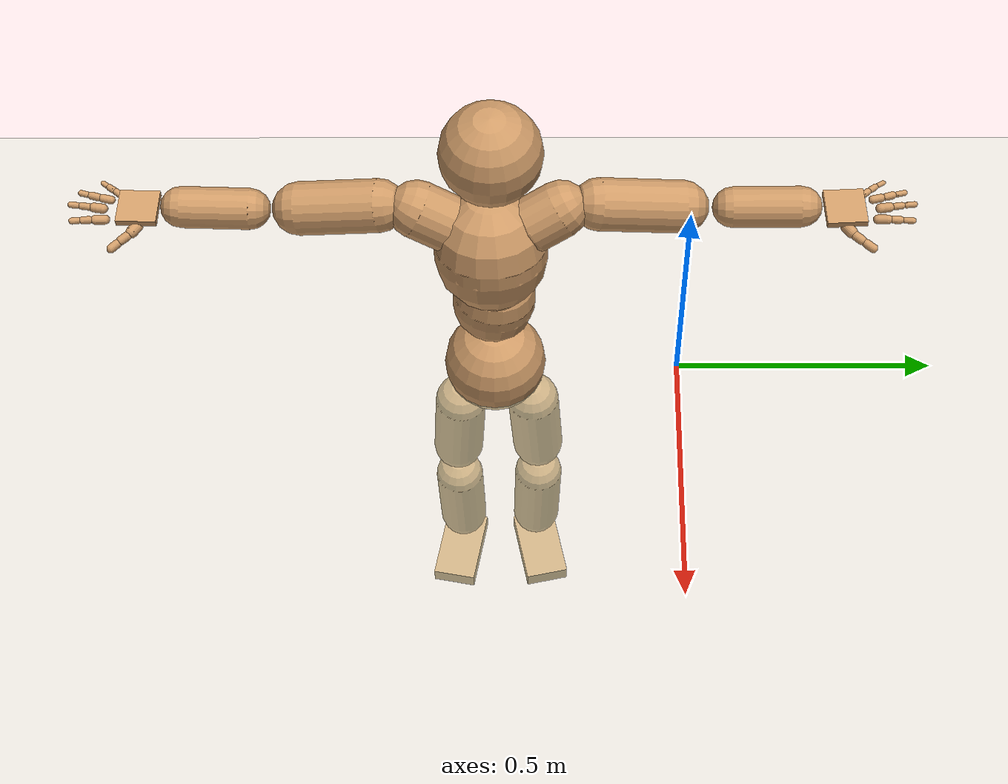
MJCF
<mujoco model="humanoid">
  <compiler coordinate="local" angle="radian"/>
  <default>
    <joint damping="0.0" armature="0.01" stiffness="0.0" limited="true"/>
    <geom conaffinity="1" condim="3" contype="7" margin="0.001" rgba="0.8 0.6 .4 1"/>
  </default>
  <asset>
    <texture type="skybox" builtin="gradient" rgb1=".4 .5 .6" rgb2="0 0 0" width="100" height="100"/>
    <texture builtin="flat" height="1278" mark="cross" markrgb="1 1 1" name="texgeom" random="0.01" rgb1="0.8 0.6 0.4" rgb2="0.8 0.6 0.4" type="cube" width="127"/>
    <texture builtin="checker" height="100" name="texplane" rgb1="0 0 0" rgb2="0.8 0.8 0.8" type="2d" width="100"/>
    <material name="MatPlane" reflectance="0.5" shininess="1" specular="1" texrepeat="60 60" texture="texplane"/>
    <material name="geom" texture="texgeom" texuniform="true"/>
  </asset>
  <worldbody>
    <light cutoff="100" diffuse="1 1 1" dir="-0 0 -1.3" directional="true" exponent="1" pos="0 0 1.3" specular=".1 .1 .1"/>
    <geom conaffinity="1" condim="3" name="floor" pos="0 0 0" rgba="0.8 0.9 0.8 1" size="100 100 .2" type="plane" material="MatPlane"/>
    <body name="Pelvis" pos="0.0001 -0.3574 0.0228">
      <freejoint name="Pelvis"/>
      <geom type="sphere" contype="1" conaffinity="1" density="500" size="0.0991" pos="0.0000 0.0000 0.0000" name="Pelvis"/>
      <body name="L_Hip" pos="-0.0056 0.0706 -0.0911">
        <joint name="L_Hip_x" type="hinge" pos="0 0 0" axis="1 0 0" stiffness="800" damping="80" armature="0.02" range="-180.0000 180.0000"/>
        <joint name="L_Hip_y" type="hinge" pos="0 0 0" axis="0 1 0" stiffness="800" damping="80" armature="0.02" range="-180.0000 180.0000"/>
        <joint name="L_Hip_z" type="hinge" pos="0 0 0" axis="0 0 1" stiffness="800" damping="80" armature="0.02" range="-180.0000 180.0000"/>
        <geom type="capsule" contype="1" conaffinity="1" density="500" fromto="-0.0047 0.0031 -0.0668 -0.0188 0.0124 -0.2674" size="0.0515" name="L_Hip"/>
        <body name="L_Knee" pos="-0.0235 0.0155 -0.3342">
          <joint name="L_Knee_x" type="hinge" pos="0 0 0" axis="1 0 0" stiffness="800" damping="80" armature="0.02" range="-180.0000 180.0000"/>
          <joint name="L_Knee_y" type="hinge" pos="0 0 0" axis="0 1 0" stiffness="800" damping="80" armature="0.02" range="-180.0000 180.0000"/>
          <joint name="L_Knee_z" type="hinge" pos="0 0 0" axis="0 0 1" stiffness="800" damping="80" armature="0.02" range="-180.0000 180.0000"/>
          <geom type="capsule" contype="1" conaffinity="1" density="500" fromto="-0.0044 -0.0019 -0.0697 -0.0176 -0.0076 -0.2788" size="0.0499" name="L_Knee"/>
          <body name="L_Ankle" pos="-0.022 -0.0095 -0.3485">
            <joint name="L_Ankle_x" type="hinge" pos="0 0 0" axis="1 0 0" stiffness="800" damping="80" armature="0.02" range="-180.0000 180.0000"/>
            <joint name="L_Ankle_y" type="hinge" pos="0 0 0" axis="0 1 0" stiffness="800" damping="80" armature="0.02" range="-180.0000 180.0000"/>
            <joint name="L_Ankle_z" type="hinge" pos="0 0 0" axis="0 0 1" stiffness="800" damping="80" armature="0.02" range="-180.0000 180.0000"/>
            <geom type="box" contype="1" conaffinity="1" density="500" pos="0.0512 0.0109 -0.0191" size="0.0791 0.0453 0.0188" quat="0.9945 0.0000 0.0000 0.1044" name="L_Ankle"/>
            <body name="L_Toe" pos="0.1024 0.0217 -0.0381">
              <joint name="L_Toe_x" type="hinge" pos="0 0 0" axis="1 0 0" stiffness="500" damping="50" armature="0.02" range="-180.0000 180.0000"/>
              <joint name="L_Toe_y" type="hinge" pos="0 0 0" axis="0 1 0" stiffness="500" damping="50" armature="0.02" range="-180.0000 180.0000"/>
              <joint name="L_Toe_z" type="hinge" pos="0 0 0" axis="0 0 1" stiffness="500" damping="50" armature="0.02" range="-180.0000 180.0000"/>
              <geom type="box" contype="1" conaffinity="1" density="500" pos="0.0000 0.0000 0.0203" size="0.0009 0.0022 0.001" quat="0.9938 0.0000 0.0000 0.1115" name="L_Toe"/>
            </body>
          </body>
        </body>
      </body>
      <body name="R_Hip" pos="-0.0072 -0.0693 -0.0974">
        <joint name="R_Hip_x" type="hinge" pos="0 0 0" axis="1 0 0" stiffness="800" damping="80" armature="0.02" range="-180.0000 180.0000"/>
        <joint name="R_Hip_y" type="hinge" pos="0 0 0" axis="0 1 0" stiffness="800" damping="80" armature="0.02" range="-180.0000 180.0000"/>
        <joint name="R_Hip_z" type="hinge" pos="0 0 0" axis="0 0 1" stiffness="800" damping="80" armature="0.02" range="-180.0000 180.0000"/>
        <geom type="capsule" contype="1" conaffinity="1" density="500" fromto="-0.0035 -0.0038 -0.0660 -0.0141 -0.0152 -0.2640" size="0.0512" name="R_Hip"/>
        <body name="R_Knee" pos="-0.0177 -0.0189 -0.33">
          <joint name="R_Knee_x" type="hinge" pos="0 0 0" axis="1 0 0" stiffness="800" damping="80" armature="0.02" range="-180.0000 180.0000"/>
          <joint name="R_Knee_y" type="hinge" pos="0 0 0" axis="0 1 0" stiffness="800" damping="80" armature="0.02" range="-180.0000 180.0000"/>
          <joint name="R_Knee_z" type="hinge" pos="0 0 0" axis="0 0 1" stiffness="800" damping="80" armature="0.02" range="-180.0000 180.0000"/>
          <geom type="capsule" contype="1" conaffinity="1" density="500" fromto="-0.0037 0.0010 -0.0680 -0.0146 0.0039 -0.2721" size="0.0498" name="R_Knee"/>
          <body name="R_Ankle" pos="-0.0183 0.0049 -0.3401">
            <joint name="R_Ankle_x" type="hinge" pos="0 0 0" axis="1 0 0" stiffness="800" damping="80" armature="0.02" range="-180.0000 180.0000"/>
            <joint name="R_Ankle_y" type="hinge" pos="0 0 0" axis="0 1 0" stiffness="800" damping="80" armature="0.02" range="-180.0000 180.0000"/>
            <joint name="R_Ankle_z" type="hinge" pos="0 0 0" axis="0 0 1" stiffness="800" damping="80" armature="0.02" range="-180.0000 180.0000"/>
            <geom type="box" contype="1" conaffinity="1" density="500" pos="0.0483 -0.0090 -0.0209" size="0.0791 0.0453 0.0188" quat="0.9958 0.0000 0.0000 -0.0920" name="R_Ankle"/>
            <body name="R_Toe" pos="0.0965 -0.018 -0.0418">
              <joint name="R_Toe_x" type="hinge" pos="0 0 0" axis="1 0 0" stiffness="500" damping="50" armature="0.02" range="-180.0000 180.0000"/>
              <joint name="R_Toe_y" type="hinge" pos="0 0 0" axis="0 1 0" stiffness="500" damping="50" armature="0.02" range="-180.0000 180.0000"/>
              <joint name="R_Toe_z" type="hinge" pos="0 0 0" axis="0 0 1" stiffness="500" damping="50" armature="0.02" range="-180.0000 180.0000"/>
              <geom type="box" contype="1" conaffinity="1" density="500" pos="0.0000 0.0000 0.0222" size="0.0009 0.0022 0.001" quat="0.9968 0.0000 0.0000 -0.0804" name="R_Toe"/>
            </body>
          </body>
        </body>
      </body>
      <body name="Torso" pos="-0.0311 -0.0053 0.1045">
        <joint name="Torso_x" type="hinge" pos="0 0 0" axis="1 0 0" stiffness="1000" damping="100" armature="0.02" range="-180.0000 180.0000"/>
        <joint name="Torso_y" type="hinge" pos="0 0 0" axis="0 1 0" stiffness="1000" damping="100" armature="0.02" range="-180.0000 180.0000"/>
        <joint name="Torso_z" type="hinge" pos="0 0 0" axis="0 0 1" stiffness="1000" damping="100" armature="0.02" range="-180.0000 180.0000"/>
        <geom type="capsule" contype="1" conaffinity="1" density="500" fromto="-0.0059 0.0070 0.0761 -0.0039 0.0046 0.0507" size="0.079" name="Torso"/>
        <body name="Spine" pos="-0.0099 0.0116 0.1268">
          <joint name="Spine_x" type="hinge" pos="0 0 0" axis="1 0 0" stiffness="1000" damping="100" armature="0.02" range="-180.0000 180.0000"/>
          <joint name="Spine_y" type="hinge" pos="0 0 0" axis="0 1 0" stiffness="1000" damping="100" armature="0.02" range="-180.0000 180.0000"/>
          <joint name="Spine_z" type="hinge" pos="0 0 0" axis="0 0 1" stiffness="1000" damping="100" armature="0.02" range="-180.0000 180.0000"/>
          <geom type="capsule" contype="1" conaffinity="1" density="500" fromto="0.0215 -0.0039 0.0277 0.0144 -0.0026 0.0184" size="0.0655" name="Spine"/>
          <body name="Chest" pos="0.0359 -0.0066 0.0461">
            <joint name="Chest_x" type="hinge" pos="0 0 0" axis="1 0 0" stiffness="1000" damping="100" armature="0.02" range="-180.0000 180.0000"/>
            <joint name="Chest_y" type="hinge" pos="0 0 0" axis="0 1 0" stiffness="1000" damping="100" armature="0.02" range="-180.0000 180.0000"/>
            <joint name="Chest_z" type="hinge" pos="0 0 0" axis="0 0 1" stiffness="1000" damping="100" armature="0.02" range="-180.0000 180.0000"/>
            <geom type="capsule" contype="1" conaffinity="1" density="500" fromto="-0.0197 -0.0017 0.0862 -0.0131 -0.0012 0.0575" size="0.1053" name="Chest"/>
            <body name="Neck" pos="-0.0486 -0.0061 0.1984">
              <joint name="Neck_x" type="hinge" pos="0 0 0" axis="1 0 0" stiffness="500" damping="50" armature="0.02" range="-180.0000 180.0000"/>
              <joint name="Neck_y" type="hinge" pos="0 0 0" axis="0 1 0" stiffness="500" damping="50" armature="0.02" range="-180.0000 180.0000"/>
              <joint name="Neck_z" type="hinge" pos="0 0 0" axis="0 0 1" stiffness="500" damping="50" armature="0.02" range="-180.0000 180.0000"/>
              <geom type="capsule" contype="1" conaffinity="1" density="500" fromto="0.0034 0.0018 0.0262 0.0136 0.0073 0.1047" size="0.0398" name="Neck"/>
              <body name="Head" pos="0.017 0.0091 0.1308">
                <joint name="Head_x" type="hinge" pos="0 0 0" axis="1 0 0" stiffness="500" damping="50" armature="0.02" range="-180.0000 180.0000"/>
                <joint name="Head_y" type="hinge" pos="0 0 0" axis="0 1 0" stiffness="500" damping="50" armature="0.02" range="-180.0000 180.0000"/>
                <joint name="Head_z" type="hinge" pos="0 0 0" axis="0 0 1" stiffness="500" damping="50" armature="0.02" range="-180.0000 180.0000"/>
                <geom type="sphere" contype="1" conaffinity="1" density="500" size="0.0934" pos="0.0000 0.0000 0.0000" name="Head"/>
              </body>
            </body>
            <body name="L_Thorax" pos="-0.0215 0.0548 0.1182">
              <joint name="L_Thorax_x" type="hinge" pos="0 0 0" axis="1 0 0" stiffness="500" damping="50" armature="0.02" range="-180.0000 180.0000"/>
              <joint name="L_Thorax_y" type="hinge" pos="0 0 0" axis="0 1 0" stiffness="500" damping="50" armature="0.02" range="-180.0000 180.0000"/>
              <joint name="L_Thorax_z" type="hinge" pos="0 0 0" axis="0 0 1" stiffness="500" damping="50" armature="0.02" range="-180.0000 180.0000"/>
              <geom type="capsule" contype="1" conaffinity="1" density="500" fromto="-0.0054 0.0178 0.0090 -0.0216 0.0713 0.0361" size="0.0529" name="L_Thorax"/>
              <body name="L_Shoulder" pos="-0.027 0.0891 0.0451">
                <joint name="L_Shoulder_x" type="hinge" pos="0 0 0" axis="1 0 0" stiffness="500" damping="50" armature="0.02" range="-180.0000 180.0000"/>
                <joint name="L_Shoulder_y" type="hinge" pos="0 0 0" axis="0 1 0" stiffness="500" damping="50" armature="0.02" range="-180.0000 180.0000"/>
                <joint name="L_Shoulder_z" type="hinge" pos="0 0 0" axis="0 0 1" stiffness="500" damping="50" armature="0.02" range="-180.0000 180.0000"/>
                <geom type="capsule" contype="1" conaffinity="1" density="500" fromto="-0.0052 0.0511 -0.0093 -0.0208 0.2043 -0.0373" size="0.0491" name="L_Shoulder"/>
                <body name="L_Elbow" pos="-0.026 0.2554 -0.0466">
                  <joint name="L_Elbow_x" type="hinge" pos="0 0 0" axis="1 0 0" stiffness="500" damping="50" armature="0.02" range="-720.0000 720.0000"/>
                  <joint name="L_Elbow_y" type="hinge" pos="0 0 0" axis="0 1 0" stiffness="500" damping="50" armature="0.02" range="-720.0000 720.0000"/>
                  <joint name="L_Elbow_z" type="hinge" pos="0 0 0" axis="0 0 1" stiffness="500" damping="50" armature="0.02" range="-720.0000 720.0000"/>
                  <geom type="capsule" contype="1" conaffinity="1" density="500" fromto="0.0009 0.0418 0.0016 0.0036 0.1671 0.0065" size="0.0381" name="L_Elbow"/>
                  <body name="L_Wrist" pos="0.0044 0.2089 0.0082">
                    <joint name="L_Wrist_x" type="hinge" pos="0 0 0" axis="1 0 0" stiffness="300" damping="30" armature="0.02" range="-180.0000 180.0000"/>
                    <joint name="L_Wrist_y" type="hinge" pos="0 0 0" axis="0 1 0" stiffness="300" damping="30" armature="0.02" range="-180.0000 180.0000"/>
                    <joint name="L_Wrist_z" type="hinge" pos="0 0 0" axis="0 0 1" stiffness="300" damping="30" armature="0.02" range="-180.0000 180.0000"/>
                    <geom type="box" contype="1" conaffinity="1" density="500" pos="-0.0020 0.0388 -0.0076" size="0.0371 0.0377 0.0069" quat="0.7254 0.0000 0.0000 -0.6883" name="L_Wrist"/>
                    <body name="L_Index1" pos="0.0198 0.0916 -0.0128">
                      <joint name="L_Index1_x" type="hinge" pos="0 0 0" axis="1 0 0" stiffness="100" damping="10" armature="0.02" range="-180.0000 180.0000"/>
                      <joint name="L_Index1_y" type="hinge" pos="0 0 0" axis="0 1 0" stiffness="100" damping="10" armature="0.02" range="-180.0000 180.0000"/>
                      <joint name="L_Index1_z" type="hinge" pos="0 0 0" axis="0 0 1" stiffness="100" damping="10" armature="0.02" range="-180.0000 180.0000"/>
                      <geom type="capsule" contype="1" conaffinity="1" density="500" fromto="0.0005 0.0060 0.0006 0.0020 0.0238 0.0023" size="0.0087" name="L_Index1"/>
                      <body name="L_Index2" pos="0.0025 0.0298 0.0028">
                        <joint name="L_Index2_x" type="hinge" pos="0 0 0" axis="1 0 0" stiffness="100" damping="10" armature="0.02" range="-180.0000 180.0000"/>
                        <joint name="L_Index2_y" type="hinge" pos="0 0 0" axis="0 1 0" stiffness="100" damping="10" armature="0.02" range="-180.0000 180.0000"/>
                        <joint name="L_Index2_z" type="hinge" pos="0 0 0" axis="0 0 1" stiffness="100" damping="10" armature="0.02" range="-180.0000 180.0000"/>
                        <geom type="capsule" contype="1" conaffinity="1" density="500" fromto="0.0001 0.0042 -0.0002 0.0002 0.0169 -0.0010" size="0.0071" name="L_Index2"/>
                        <body name="L_Index3" pos="0.0003 0.0211 -0.0012">
                          <joint name="L_Index3_x" type="hinge" pos="0 0 0" axis="1 0 0" stiffness="100" damping="10" armature="0.02" range="-180.0000 180.0000"/>
                          <joint name="L_Index3_y" type="hinge" pos="0 0 0" axis="0 1 0" stiffness="100" damping="10" armature="0.02" range="-180.0000 180.0000"/>
                          <joint name="L_Index3_z" type="hinge" pos="0 0 0" axis="0 0 1" stiffness="100" damping="10" armature="0.02" range="-180.0000 180.0000"/>
                          <geom type="capsule" contype="1" conaffinity="1" density="500" fromto="0.0005 0.0046 0.0002 0.0018 0.0185 0.0006" size="0.0059" name="L_Index3"/>
                        </body>
                      </body>
                    </body>
                    <body name="L_Middle1" pos="-0.0024 0.0981 -0.0106">
                      <joint name="L_Middle1_x" type="hinge" pos="0 0 0" axis="1 0 0" stiffness="100" damping="10" armature="0.02" range="-180.0000 180.0000"/>
                      <joint name="L_Middle1_y" type="hinge" pos="0 0 0" axis="0 1 0" stiffness="100" damping="10" armature="0.02" range="-180.0000 180.0000"/>
                      <joint name="L_Middle1_z" type="hinge" pos="0 0 0" axis="0 0 1" stiffness="100" damping="10" armature="0.02" range="-180.0000 180.0000"/>
                      <geom type="capsule" contype="1" conaffinity="1" density="500" fromto="-0.0008 0.0056 0.0003 -0.0030 0.0225 0.0011" size="0.0089" name="L_Middle1"/>
                      <body name="L_Middle2" pos="-0.0038 0.0281 0.0014">
                        <joint name="L_Middle2_x" type="hinge" pos="0 0 0" axis="1 0 0" stiffness="100" damping="10" armature="0.02" range="-180.0000 180.0000"/>
                        <joint name="L_Middle2_y" type="hinge" pos="0 0 0" axis="0 1 0" stiffness="100" damping="10" armature="0.02" range="-180.0000 180.0000"/>
                        <joint name="L_Middle2_z" type="hinge" pos="0 0 0" axis="0 0 1" stiffness="100" damping="10" armature="0.02" range="-180.0000 180.0000"/>
                        <geom type="capsule" contype="1" conaffinity="1" density="500" fromto="-0.0007 0.0043 -0.0001 -0.0029 0.0174 -0.0005" size="0.0066" name="L_Middle2"/>
                        <body name="L_Middle3" pos="-0.0037 0.0217 -0.0006">
                          <joint name="L_Middle3_x" type="hinge" pos="0 0 0" axis="1 0 0" stiffness="100" damping="10" armature="0.02" range="-180.0000 180.0000"/>
                          <joint name="L_Middle3_y" type="hinge" pos="0 0 0" axis="0 1 0" stiffness="100" damping="10" armature="0.02" range="-180.0000 180.0000"/>
                          <joint name="L_Middle3_z" type="hinge" pos="0 0 0" axis="0 0 1" stiffness="100" damping="10" armature="0.02" range="-180.0000 180.0000"/>
                          <geom type="capsule" contype="1" conaffinity="1" density="500" fromto="-0.0003 0.0047 0.0003 -0.0013 0.0190 0.0011" size="0.0056" name="L_Middle3"/>
                        </body>
                      </body>
                    </body>
                    <body name="L_Pinky1" pos="-0.0391 0.0747 -0.0187">
                      <joint name="L_Pinky1_x" type="hinge" pos="0 0 0" axis="1 0 0" stiffness="100" damping="10" armature="0.02" range="-180.0000 180.0000"/>
                      <joint name="L_Pinky1_y" type="hinge" pos="0 0 0" axis="0 1 0" stiffness="100" damping="10" armature="0.02" range="-180.0000 180.0000"/>
                      <joint name="L_Pinky1_z" type="hinge" pos="0 0 0" axis="0 0 1" stiffness="100" damping="10" armature="0.02" range="-180.0000 180.0000"/>
                      <geom type="capsule" contype="1" conaffinity="1" density="500" fromto="-0.0023 0.0028 -0.0001 -0.0091 0.0111 -0.0003" size="0.0064" name="L_Pinky1"/>
                      <body name="L_Pinky2" pos="-0.0113 0.0139 -0.0004">
                        <joint name="L_Pinky2_x" type="hinge" pos="0 0 0" axis="1 0 0" stiffness="100" damping="10" armature="0.02" range="-180.0000 180.0000"/>
                        <joint name="L_Pinky2_y" type="hinge" pos="0 0 0" axis="0 1 0" stiffness="100" damping="10" armature="0.02" range="-180.0000 180.0000"/>
                        <joint name="L_Pinky2_z" type="hinge" pos="0 0 0" axis="0 0 1" stiffness="100" damping="10" armature="0.02" range="-180.0000 180.0000"/>
                        <geom type="capsule" contype="1" conaffinity="1" density="500" fromto="-0.0022 0.0028 -0.0002 -0.0087 0.0113 -0.0007" size="0.0062" name="L_Pinky2"/>
                        <body name="L_Pinky3" pos="-0.0109 0.0141 -0.0009">
                          <joint name="L_Pinky3_x" type="hinge" pos="0 0 0" axis="1 0 0" stiffness="100" damping="10" armature="0.02" range="-180.0000 180.0000"/>
                          <joint name="L_Pinky3_y" type="hinge" pos="0 0 0" axis="0 1 0" stiffness="100" damping="10" armature="0.02" range="-180.0000 180.0000"/>
                          <joint name="L_Pinky3_z" type="hinge" pos="0 0 0" axis="0 0 1" stiffness="100" damping="10" armature="0.02" range="-180.0000 180.0000"/>
                          <geom type="capsule" contype="1" conaffinity="1" density="500" fromto="-0.0018 0.0032 0.0002 -0.0071 0.0129 0.0009" size="0.0047" name="L_Pinky3"/>
                        </body>
                      </body>
                    </body>
                    <body name="L_Ring1" pos="-0.0243 0.0868 -0.0135">
                      <joint name="L_Ring1_x" type="hinge" pos="0 0 0" axis="1 0 0" stiffness="100" damping="10" armature="0.02" range="-180.0000 180.0000"/>
                      <joint name="L_Ring1_y" type="hinge" pos="0 0 0" axis="0 1 0" stiffness="100" damping="10" armature="0.02" range="-180.0000 180.0000"/>
                      <joint name="L_Ring1_z" type="hinge" pos="0 0 0" axis="0 0 1" stiffness="100" damping="10" armature="0.02" range="-180.0000 180.0000"/>
                      <geom type="capsule" contype="1" conaffinity="1" density="500" fromto="-0.0011 0.0051 0.0003 -0.0042 0.0205 0.0013" size="0.0077" name="L_Ring1"/>
                      <body name="L_Ring2" pos="-0.0053 0.0256 0.0017">
                        <joint name="L_Ring2_x" type="hinge" pos="0 0 0" axis="1 0 0" stiffness="100" damping="10" armature="0.02" range="-180.0000 180.0000"/>
                        <joint name="L_Ring2_y" type="hinge" pos="0 0 0" axis="0 1 0" stiffness="100" damping="10" armature="0.02" range="-180.0000 180.0000"/>
                        <joint name="L_Ring2_z" type="hinge" pos="0 0 0" axis="0 0 1" stiffness="100" damping="10" armature="0.02" range="-180.0000 180.0000"/>
                        <geom type="capsule" contype="1" conaffinity="1" density="500" fromto="-0.0013 0.0042 -0.0002 -0.0054 0.0167 -0.0008" size="0.0071" name="L_Ring2"/>
                        <body name="L_Ring3" pos="-0.0067 0.0209 -0.001">
                          <joint name="L_Ring3_x" type="hinge" pos="0 0 0" axis="1 0 0" stiffness="100" damping="10" armature="0.02" range="-180.0000 180.0000"/>
                          <joint name="L_Ring3_y" type="hinge" pos="0 0 0" axis="0 1 0" stiffness="100" damping="10" armature="0.02" range="-180.0000 180.0000"/>
                          <joint name="L_Ring3_z" type="hinge" pos="0 0 0" axis="0 0 1" stiffness="100" damping="10" armature="0.02" range="-180.0000 180.0000"/>
                          <geom type="capsule" contype="1" conaffinity="1" density="500" fromto="-0.0009 0.0046 0.0002 -0.0038 0.0183 0.0008" size="0.0054" name="L_Ring3"/>
                        </body>
                      </body>
                    </body>
                    <body name="L_Thumb1" pos="0.0256 0.0365 -0.0202">
                      <joint name="L_Thumb1_x" type="hinge" pos="0 0 0" axis="1 0 0" stiffness="100" damping="10" armature="0.02" range="-180.0000 180.0000"/>
                      <joint name="L_Thumb1_y" type="hinge" pos="0 0 0" axis="0 1 0" stiffness="100" damping="10" armature="0.02" range="-180.0000 180.0000"/>
                      <joint name="L_Thumb1_z" type="hinge" pos="0 0 0" axis="0 0 1" stiffness="100" damping="10" armature="0.02" range="-180.0000 180.0000"/>
                      <geom type="capsule" contype="1" conaffinity="1" density="500" fromto="0.0045 0.0031 0.0001 0.0180 0.0123 0.0005" size="0.0109" name="L_Thumb1"/>
                      <body name="L_Thumb2" pos="0.0225 0.0154 0.0006">
                        <joint name="L_Thumb2_x" type="hinge" pos="0 0 0" axis="1 0 0" stiffness="100" damping="10" armature="0.02" range="-180.0000 180.0000"/>
                        <joint name="L_Thumb2_y" type="hinge" pos="0 0 0" axis="0 1 0" stiffness="100" damping="10" armature="0.02" range="-180.0000 180.0000"/>
                        <joint name="L_Thumb2_z" type="hinge" pos="0 0 0" axis="0 0 1" stiffness="100" damping="10" armature="0.02" range="-180.0000 180.0000"/>
                        <geom type="capsule" contype="1" conaffinity="1" density="500" fromto="0.0027 0.0037 -0.0011 0.0108 0.0149 -0.0044" size="0.0086" name="L_Thumb2"/>
                        <body name="L_Thumb3" pos="0.0135 0.0186 -0.0056">
                          <joint name="L_Thumb3_x" type="hinge" pos="0 0 0" axis="1 0 0" stiffness="100" damping="10" armature="0.02" range="-180.0000 180.0000"/>
                          <joint name="L_Thumb3_y" type="hinge" pos="0 0 0" axis="0 1 0" stiffness="100" damping="10" armature="0.02" range="-180.0000 180.0000"/>
                          <joint name="L_Thumb3_z" type="hinge" pos="0 0 0" axis="0 0 1" stiffness="100" damping="10" armature="0.02" range="-180.0000 180.0000"/>
                          <geom type="capsule" contype="1" conaffinity="1" density="500" fromto="0.0031 0.0041 -0.0007 0.0124 0.0165 -0.0028" size="0.0082" name="L_Thumb3"/>
                        </body>
                      </body>
                    </body>
                  </body>
                </body>
              </body>
            </body>
            <body name="R_Thorax" pos="-0.0282 -0.0575 0.1144">
              <joint name="R_Thorax_x" type="hinge" pos="0 0 0" axis="1 0 0" stiffness="500" damping="50" armature="0.02" range="-180.0000 180.0000"/>
              <joint name="R_Thorax_y" type="hinge" pos="0 0 0" axis="0 1 0" stiffness="500" damping="50" armature="0.02" range="-180.0000 180.0000"/>
              <joint name="R_Thorax_z" type="hinge" pos="0 0 0" axis="0 0 1" stiffness="500" damping="50" armature="0.02" range="-180.0000 180.0000"/>
              <geom type="capsule" contype="1" conaffinity="1" density="500" fromto="-0.0039 -0.0192 0.0094 -0.0157 -0.0770 0.0375" size="0.054" name="R_Thorax"/>
              <body name="R_Shoulder" pos="-0.0196 -0.0962 0.0469">
                <joint name="R_Shoulder_x" type="hinge" pos="0 0 0" axis="1 0 0" stiffness="500" damping="50" armature="0.02" range="-180.0000 180.0000"/>
                <joint name="R_Shoulder_y" type="hinge" pos="0 0 0" axis="0 1 0" stiffness="500" damping="50" armature="0.02" range="-180.0000 180.0000"/>
                <joint name="R_Shoulder_z" type="hinge" pos="0 0 0" axis="0 0 1" stiffness="500" damping="50" armature="0.02" range="-180.0000 180.0000"/>
                <geom type="capsule" contype="1" conaffinity="1" density="500" fromto="-0.0039 -0.0492 -0.0083 -0.0158 -0.1966 -0.0331" size="0.0496" name="R_Shoulder"/>
                <body name="R_Elbow" pos="-0.0197 -0.2458 -0.0413">
                  <joint name="R_Elbow_x" type="hinge" pos="0 0 0" axis="1 0 0" stiffness="500" damping="50" armature="0.02" range="-720.0000 720.0000"/>
                  <joint name="R_Elbow_y" type="hinge" pos="0 0 0" axis="0 1 0" stiffness="500" damping="50" armature="0.02" range="-720.0000 720.0000"/>
                  <joint name="R_Elbow_z" type="hinge" pos="0 0 0" axis="0 0 1" stiffness="500" damping="50" armature="0.02" range="-720.0000 720.0000"/>
                  <geom type="capsule" contype="1" conaffinity="1" density="500" fromto="-0.0008 -0.0419 0.0008 -0.0032 -0.1675 0.0032" size="0.0382" name="R_Elbow"/>
                  <body name="R_Wrist" pos="-0.0041 -0.2093 0.004">
                    <joint name="R_Wrist_x" type="hinge" pos="0 0 0" axis="1 0 0" stiffness="300" damping="30" armature="0.02" range="-180.0000 180.0000"/>
                    <joint name="R_Wrist_y" type="hinge" pos="0 0 0" axis="0 1 0" stiffness="300" damping="30" armature="0.02" range="-180.0000 180.0000"/>
                    <joint name="R_Wrist_z" type="hinge" pos="0 0 0" axis="0 0 1" stiffness="300" damping="30" armature="0.02" range="-180.0000 180.0000"/>
                    <geom type="box" contype="1" conaffinity="1" density="500" pos="-0.0013 -0.0383 -0.0071" size="0.0371 0.0352 0.0071" quat="0.7190 0.0000 0.0000 0.6950" name="R_Wrist"/>
                    <body name="R_Index1" pos="0.0213 -0.0906 -0.0119">
                      <joint name="R_Index1_x" type="hinge" pos="0 0 0" axis="1 0 0" stiffness="100" damping="10" armature="0.02" range="-180.0000 180.0000"/>
                      <joint name="R_Index1_y" type="hinge" pos="0 0 0" axis="0 1 0" stiffness="100" damping="10" armature="0.02" range="-180.0000 180.0000"/>
                      <joint name="R_Index1_z" type="hinge" pos="0 0 0" axis="0 0 1" stiffness="100" damping="10" armature="0.02" range="-180.0000 180.0000"/>
                      <geom type="capsule" contype="1" conaffinity="1" density="500" fromto="0.0005 -0.0060 0.0006 0.0020 -0.0238 0.0023" size="0.0087" name="R_Index1"/>
                      <body name="R_Index2" pos="0.0025 -0.0298 0.0028">
                        <joint name="R_Index2_x" type="hinge" pos="0 0 0" axis="1 0 0" stiffness="100" damping="10" armature="0.02" range="-180.0000 180.0000"/>
                        <joint name="R_Index2_y" type="hinge" pos="0 0 0" axis="0 1 0" stiffness="100" damping="10" armature="0.02" range="-180.0000 180.0000"/>
                        <joint name="R_Index2_z" type="hinge" pos="0 0 0" axis="0 0 1" stiffness="100" damping="10" armature="0.02" range="-180.0000 180.0000"/>
                        <geom type="capsule" contype="1" conaffinity="1" density="500" fromto="0.0001 -0.0042 -0.0002 0.0002 -0.0169 -0.0010" size="0.0071" name="R_Index2"/>
                        <body name="R_Index3" pos="0.0003 -0.0211 -0.0012">
                          <joint name="R_Index3_x" type="hinge" pos="0 0 0" axis="1 0 0" stiffness="100" damping="10" armature="0.02" range="-180.0000 180.0000"/>
                          <joint name="R_Index3_y" type="hinge" pos="0 0 0" axis="0 1 0" stiffness="100" damping="10" armature="0.02" range="-180.0000 180.0000"/>
                          <joint name="R_Index3_z" type="hinge" pos="0 0 0" axis="0 0 1" stiffness="100" damping="10" armature="0.02" range="-180.0000 180.0000"/>
                          <geom type="capsule" contype="1" conaffinity="1" density="500" fromto="0.0005 -0.0038 0.0002 0.0018 -0.0153 0.0006" size="0.0062" name="R_Index3"/>
                        </body>
                      </body>
                    </body>
                    <body name="R_Middle1" pos="-0.0009 -0.0971 -0.0097">
                      <joint name="R_Middle1_x" type="hinge" pos="0 0 0" axis="1 0 0" stiffness="100" damping="10" armature="0.02" range="-180.0000 180.0000"/>
                      <joint name="R_Middle1_y" type="hinge" pos="0 0 0" axis="0 1 0" stiffness="100" damping="10" armature="0.02" range="-180.0000 180.0000"/>
                      <joint name="R_Middle1_z" type="hinge" pos="0 0 0" axis="0 0 1" stiffness="100" damping="10" armature="0.02" range="-180.0000 180.0000"/>
                      <geom type="capsule" contype="1" conaffinity="1" density="500" fromto="-0.0008 -0.0056 0.0003 -0.0030 -0.0225 0.0011" size="0.0089" name="R_Middle1"/>
                      <body name="R_Middle2" pos="-0.0038 -0.0281 0.0014">
                        <joint name="R_Middle2_x" type="hinge" pos="0 0 0" axis="1 0 0" stiffness="100" damping="10" armature="0.02" range="-180.0000 180.0000"/>
                        <joint name="R_Middle2_y" type="hinge" pos="0 0 0" axis="0 1 0" stiffness="100" damping="10" armature="0.02" range="-180.0000 180.0000"/>
                        <joint name="R_Middle2_z" type="hinge" pos="0 0 0" axis="0 0 1" stiffness="100" damping="10" armature="0.02" range="-180.0000 180.0000"/>
                        <geom type="capsule" contype="1" conaffinity="1" density="500" fromto="-0.0007 -0.0043 -0.0001 -0.0029 -0.0174 -0.0005" size="0.0066" name="R_Middle2"/>
                        <body name="R_Middle3" pos="-0.0037 -0.0217 -0.0006">
                          <joint name="R_Middle3_x" type="hinge" pos="0 0 0" axis="1 0 0" stiffness="100" damping="10" armature="0.02" range="-180.0000 180.0000"/>
                          <joint name="R_Middle3_y" type="hinge" pos="0 0 0" axis="0 1 0" stiffness="100" damping="10" armature="0.02" range="-180.0000 180.0000"/>
                          <joint name="R_Middle3_z" type="hinge" pos="0 0 0" axis="0 0 1" stiffness="100" damping="10" armature="0.02" range="-180.0000 180.0000"/>
                          <geom type="capsule" contype="1" conaffinity="1" density="500" fromto="-0.0003 -0.0039 0.0003 -0.0013 -0.0158 0.0011" size="0.0059" name="R_Middle3"/>
                        </body>
                      </body>
                    </body>
                    <body name="R_Pinky1" pos="-0.0376 -0.0737 -0.0178">
                      <joint name="R_Pinky1_x" type="hinge" pos="0 0 0" axis="1 0 0" stiffness="100" damping="10" armature="0.02" range="-180.0000 180.0000"/>
                      <joint name="R_Pinky1_y" type="hinge" pos="0 0 0" axis="0 1 0" stiffness="100" damping="10" armature="0.02" range="-180.0000 180.0000"/>
                      <joint name="R_Pinky1_z" type="hinge" pos="0 0 0" axis="0 0 1" stiffness="100" damping="10" armature="0.02" range="-180.0000 180.0000"/>
                      <geom type="capsule" contype="1" conaffinity="1" density="500" fromto="-0.0023 -0.0028 -0.0001 -0.0091 -0.0111 -0.0003" size="0.0064" name="R_Pinky1"/>
                      <body name="R_Pinky2" pos="-0.0113 -0.0139 -0.0004">
                        <joint name="R_Pinky2_x" type="hinge" pos="0 0 0" axis="1 0 0" stiffness="100" damping="10" armature="0.02" range="-180.0000 180.0000"/>
                        <joint name="R_Pinky2_y" type="hinge" pos="0 0 0" axis="0 1 0" stiffness="100" damping="10" armature="0.02" range="-180.0000 180.0000"/>
                        <joint name="R_Pinky2_z" type="hinge" pos="0 0 0" axis="0 0 1" stiffness="100" damping="10" armature="0.02" range="-180.0000 180.0000"/>
                        <geom type="capsule" contype="1" conaffinity="1" density="500" fromto="-0.0022 -0.0028 -0.0002 -0.0087 -0.0113 -0.0007" size="0.0062" name="R_Pinky2"/>
                        <body name="R_Pinky3" pos="-0.0109 -0.0141 -0.0009">
                          <joint name="R_Pinky3_x" type="hinge" pos="0 0 0" axis="1 0 0" stiffness="100" damping="10" armature="0.02" range="-180.0000 180.0000"/>
                          <joint name="R_Pinky3_y" type="hinge" pos="0 0 0" axis="0 1 0" stiffness="100" damping="10" armature="0.02" range="-180.0000 180.0000"/>
                          <joint name="R_Pinky3_z" type="hinge" pos="0 0 0" axis="0 0 1" stiffness="100" damping="10" armature="0.02" range="-180.0000 180.0000"/>
                          <geom type="capsule" contype="1" conaffinity="1" density="500" fromto="-0.0018 -0.0024 0.0002 -0.0071 -0.0097 0.0009" size="0.0049" name="R_Pinky3"/>
                        </body>
                      </body>
                    </body>
                    <body name="R_Ring1" pos="-0.0228 -0.0859 -0.0126">
                      <joint name="R_Ring1_x" type="hinge" pos="0 0 0" axis="1 0 0" stiffness="100" damping="10" armature="0.02" range="-180.0000 180.0000"/>
                      <joint name="R_Ring1_y" type="hinge" pos="0 0 0" axis="0 1 0" stiffness="100" damping="10" armature="0.02" range="-180.0000 180.0000"/>
                      <joint name="R_Ring1_z" type="hinge" pos="0 0 0" axis="0 0 1" stiffness="100" damping="10" armature="0.02" range="-180.0000 180.0000"/>
                      <geom type="capsule" contype="1" conaffinity="1" density="500" fromto="-0.0011 -0.0051 0.0003 -0.0042 -0.0205 0.0013" size="0.0077" name="R_Ring1"/>
                      <body name="R_Ring2" pos="-0.0053 -0.0256 0.0017">
                        <joint name="R_Ring2_x" type="hinge" pos="0 0 0" axis="1 0 0" stiffness="100" damping="10" armature="0.02" range="-180.0000 180.0000"/>
                        <joint name="R_Ring2_y" type="hinge" pos="0 0 0" axis="0 1 0" stiffness="100" damping="10" armature="0.02" range="-180.0000 180.0000"/>
                        <joint name="R_Ring2_z" type="hinge" pos="0 0 0" axis="0 0 1" stiffness="100" damping="10" armature="0.02" range="-180.0000 180.0000"/>
                        <geom type="capsule" contype="1" conaffinity="1" density="500" fromto="-0.0013 -0.0042 -0.0002 -0.0054 -0.0167 -0.0008" size="0.0071" name="R_Ring2"/>
                        <body name="R_Ring3" pos="-0.0067 -0.0209 -0.001">
                          <joint name="R_Ring3_x" type="hinge" pos="0 0 0" axis="1 0 0" stiffness="100" damping="10" armature="0.02" range="-180.0000 180.0000"/>
                          <joint name="R_Ring3_y" type="hinge" pos="0 0 0" axis="0 1 0" stiffness="100" damping="10" armature="0.02" range="-180.0000 180.0000"/>
                          <joint name="R_Ring3_z" type="hinge" pos="0 0 0" axis="0 0 1" stiffness="100" damping="10" armature="0.02" range="-180.0000 180.0000"/>
                          <geom type="capsule" contype="1" conaffinity="1" density="500" fromto="-0.0009 -0.0038 0.0002 -0.0038 -0.0151 0.0008" size="0.0057" name="R_Ring3"/>
                        </body>
                      </body>
                    </body>
                    <body name="R_Thumb1" pos="0.0271 -0.0355 -0.0193">
                      <joint name="R_Thumb1_x" type="hinge" pos="0 0 0" axis="1 0 0" stiffness="100" damping="10" armature="0.02" range="-180.0000 180.0000"/>
                      <joint name="R_Thumb1_y" type="hinge" pos="0 0 0" axis="0 1 0" stiffness="100" damping="10" armature="0.02" range="-180.0000 180.0000"/>
                      <joint name="R_Thumb1_z" type="hinge" pos="0 0 0" axis="0 0 1" stiffness="100" damping="10" armature="0.02" range="-180.0000 180.0000"/>
                      <geom type="capsule" contype="1" conaffinity="1" density="500" fromto="0.0045 -0.0031 0.0001 0.0180 -0.0123 0.0005" size="0.0109" name="R_Thumb1"/>
                      <body name="R_Thumb2" pos="0.0225 -0.0154 0.0006">
                        <joint name="R_Thumb2_x" type="hinge" pos="0 0 0" axis="1 0 0" stiffness="100" damping="10" armature="0.02" range="-180.0000 180.0000"/>
                        <joint name="R_Thumb2_y" type="hinge" pos="0 0 0" axis="0 1 0" stiffness="100" damping="10" armature="0.02" range="-180.0000 180.0000"/>
                        <joint name="R_Thumb2_z" type="hinge" pos="0 0 0" axis="0 0 1" stiffness="100" damping="10" armature="0.02" range="-180.0000 180.0000"/>
                        <geom type="capsule" contype="1" conaffinity="1" density="500" fromto="0.0027 -0.0037 -0.0011 0.0108 -0.0149 -0.0044" size="0.0086" name="R_Thumb2"/>
                        <body name="R_Thumb3" pos="0.0135 -0.0186 -0.0056">
                          <joint name="R_Thumb3_x" type="hinge" pos="0 0 0" axis="1 0 0" stiffness="100" damping="10" armature="0.02" range="-180.0000 180.0000"/>
                          <joint name="R_Thumb3_y" type="hinge" pos="0 0 0" axis="0 1 0" stiffness="100" damping="10" armature="0.02" range="-180.0000 180.0000"/>
                          <joint name="R_Thumb3_z" type="hinge" pos="0 0 0" axis="0 0 1" stiffness="100" damping="10" armature="0.02" range="-180.0000 180.0000"/>
                          <geom type="capsule" contype="1" conaffinity="1" density="500" fromto="0.0031 -0.0033 -0.0007 0.0124 -0.0133 -0.0028" size="0.0084" name="R_Thumb3"/>
                        </body>
                      </body>
                    </body>
                  </body>
                </body>
              </body>
            </body>
          </body>
        </body>
      </body>
    </body>
  </worldbody>
  <actuator>
    <motor name="L_Hip_x" joint="L_Hip_x" gear="500"/>
    <motor name="L_Hip_y" joint="L_Hip_y" gear="500"/>
    <motor name="L_Hip_z" joint="L_Hip_z" gear="500"/>
    <motor name="L_Knee_x" joint="L_Knee_x" gear="500"/>
    <motor name="L_Knee_y" joint="L_Knee_y" gear="500"/>
    <motor name="L_Knee_z" joint="L_Knee_z" gear="500"/>
    <motor name="L_Ankle_x" joint="L_Ankle_x" gear="500"/>
    <motor name="L_Ankle_y" joint="L_Ankle_y" gear="500"/>
    <motor name="L_Ankle_z" joint="L_Ankle_z" gear="500"/>
    <motor name="L_Toe_x" joint="L_Toe_x" gear="500"/>
    <motor name="L_Toe_y" joint="L_Toe_y" gear="500"/>
    <motor name="L_Toe_z" joint="L_Toe_z" gear="500"/>
    <motor name="R_Hip_x" joint="R_Hip_x" gear="500"/>
    <motor name="R_Hip_y" joint="R_Hip_y" gear="500"/>
    <motor name="R_Hip_z" joint="R_Hip_z" gear="500"/>
    <motor name="R_Knee_x" joint="R_Knee_x" gear="500"/>
    <motor name="R_Knee_y" joint="R_Knee_y" gear="500"/>
    <motor name="R_Knee_z" joint="R_Knee_z" gear="500"/>
    <motor name="R_Ankle_x" joint="R_Ankle_x" gear="500"/>
    <motor name="R_Ankle_y" joint="R_Ankle_y" gear="500"/>
    <motor name="R_Ankle_z" joint="R_Ankle_z" gear="500"/>
    <motor name="R_Toe_x" joint="R_Toe_x" gear="500"/>
    <motor name="R_Toe_y" joint="R_Toe_y" gear="500"/>
    <motor name="R_Toe_z" joint="R_Toe_z" gear="500"/>
    <motor name="Torso_x" joint="Torso_x" gear="500"/>
    <motor name="Torso_y" joint="Torso_y" gear="500"/>
    <motor name="Torso_z" joint="Torso_z" gear="500"/>
    <motor name="Spine_x" joint="Spine_x" gear="500"/>
    <motor name="Spine_y" joint="Spine_y" gear="500"/>
    <motor name="Spine_z" joint="Spine_z" gear="500"/>
    <motor name="Chest_x" joint="Chest_x" gear="500"/>
    <motor name="Chest_y" joint="Chest_y" gear="500"/>
    <motor name="Chest_z" joint="Chest_z" gear="500"/>
    <motor name="Neck_x" joint="Neck_x" gear="500"/>
    <motor name="Neck_y" joint="Neck_y" gear="500"/>
    <motor name="Neck_z" joint="Neck_z" gear="500"/>
    <motor name="Head_x" joint="Head_x" gear="500"/>
    <motor name="Head_y" joint="Head_y" gear="500"/>
    <motor name="Head_z" joint="Head_z" gear="500"/>
    <motor name="L_Thorax_x" joint="L_Thorax_x" gear="500"/>
    <motor name="L_Thorax_y" joint="L_Thorax_y" gear="500"/>
    <motor name="L_Thorax_z" joint="L_Thorax_z" gear="500"/>
    <motor name="L_Shoulder_x" joint="L_Shoulder_x" gear="500"/>
    <motor name="L_Shoulder_y" joint="L_Shoulder_y" gear="500"/>
    <motor name="L_Shoulder_z" joint="L_Shoulder_z" gear="500"/>
    <motor name="L_Elbow_x" joint="L_Elbow_x" gear="500"/>
    <motor name="L_Elbow_y" joint="L_Elbow_y" gear="500"/>
    <motor name="L_Elbow_z" joint="L_Elbow_z" gear="500"/>
    <motor name="L_Wrist_x" joint="L_Wrist_x" gear="500"/>
    <motor name="L_Wrist_y" joint="L_Wrist_y" gear="500"/>
    <motor name="L_Wrist_z" joint="L_Wrist_z" gear="500"/>
    <motor name="L_Index1_x" joint="L_Index1_x" gear="500"/>
    <motor name="L_Index1_y" joint="L_Index1_y" gear="500"/>
    <motor name="L_Index1_z" joint="L_Index1_z" gear="500"/>
    <motor name="L_Index2_x" joint="L_Index2_x" gear="500"/>
    <motor name="L_Index2_y" joint="L_Index2_y" gear="500"/>
    <motor name="L_Index2_z" joint="L_Index2_z" gear="500"/>
    <motor name="L_Index3_x" joint="L_Index3_x" gear="500"/>
    <motor name="L_Index3_y" joint="L_Index3_y" gear="500"/>
    <motor name="L_Index3_z" joint="L_Index3_z" gear="500"/>
    <motor name="L_Middle1_x" joint="L_Middle1_x" gear="500"/>
    <motor name="L_Middle1_y" joint="L_Middle1_y" gear="500"/>
    <motor name="L_Middle1_z" joint="L_Middle1_z" gear="500"/>
    <motor name="L_Middle2_x" joint="L_Middle2_x" gear="500"/>
    <motor name="L_Middle2_y" joint="L_Middle2_y" gear="500"/>
    <motor name="L_Middle2_z" joint="L_Middle2_z" gear="500"/>
    <motor name="L_Middle3_x" joint="L_Middle3_x" gear="500"/>
    <motor name="L_Middle3_y" joint="L_Middle3_y" gear="500"/>
    <motor name="L_Middle3_z" joint="L_Middle3_z" gear="500"/>
    <motor name="L_Pinky1_x" joint="L_Pinky1_x" gear="500"/>
    <motor name="L_Pinky1_y" joint="L_Pinky1_y" gear="500"/>
    <motor name="L_Pinky1_z" joint="L_Pinky1_z" gear="500"/>
    <motor name="L_Pinky2_x" joint="L_Pinky2_x" gear="500"/>
    <motor name="L_Pinky2_y" joint="L_Pinky2_y" gear="500"/>
    <motor name="L_Pinky2_z" joint="L_Pinky2_z" gear="500"/>
    <motor name="L_Pinky3_x" joint="L_Pinky3_x" gear="500"/>
    <motor name="L_Pinky3_y" joint="L_Pinky3_y" gear="500"/>
    <motor name="L_Pinky3_z" joint="L_Pinky3_z" gear="500"/>
    <motor name="L_Ring1_x" joint="L_Ring1_x" gear="500"/>
    <motor name="L_Ring1_y" joint="L_Ring1_y" gear="500"/>
    <motor name="L_Ring1_z" joint="L_Ring1_z" gear="500"/>
    <motor name="L_Ring2_x" joint="L_Ring2_x" gear="500"/>
    <motor name="L_Ring2_y" joint="L_Ring2_y" gear="500"/>
    <motor name="L_Ring2_z" joint="L_Ring2_z" gear="500"/>
    <motor name="L_Ring3_x" joint="L_Ring3_x" gear="500"/>
    <motor name="L_Ring3_y" joint="L_Ring3_y" gear="500"/>
    <motor name="L_Ring3_z" joint="L_Ring3_z" gear="500"/>
    <motor name="L_Thumb1_x" joint="L_Thumb1_x" gear="500"/>
    <motor name="L_Thumb1_y" joint="L_Thumb1_y" gear="500"/>
    <motor name="L_Thumb1_z" joint="L_Thumb1_z" gear="500"/>
    <motor name="L_Thumb2_x" joint="L_Thumb2_x" gear="500"/>
    <motor name="L_Thumb2_y" joint="L_Thumb2_y" gear="500"/>
    <motor name="L_Thumb2_z" joint="L_Thumb2_z" gear="500"/>
    <motor name="L_Thumb3_x" joint="L_Thumb3_x" gear="500"/>
    <motor name="L_Thumb3_y" joint="L_Thumb3_y" gear="500"/>
    <motor name="L_Thumb3_z" joint="L_Thumb3_z" gear="500"/>
    <motor name="R_Thorax_x" joint="R_Thorax_x" gear="500"/>
    <motor name="R_Thorax_y" joint="R_Thorax_y" gear="500"/>
    <motor name="R_Thorax_z" joint="R_Thorax_z" gear="500"/>
    <motor name="R_Shoulder_x" joint="R_Shoulder_x" gear="500"/>
    <motor name="R_Shoulder_y" joint="R_Shoulder_y" gear="500"/>
    <motor name="R_Shoulder_z" joint="R_Shoulder_z" gear="500"/>
    <motor name="R_Elbow_x" joint="R_Elbow_x" gear="500"/>
    <motor name="R_Elbow_y" joint="R_Elbow_y" gear="500"/>
    <motor name="R_Elbow_z" joint="R_Elbow_z" gear="500"/>
    <motor name="R_Wrist_x" joint="R_Wrist_x" gear="500"/>
    <motor name="R_Wrist_y" joint="R_Wrist_y" gear="500"/>
    <motor name="R_Wrist_z" joint="R_Wrist_z" gear="500"/>
    <motor name="R_Index1_x" joint="R_Index1_x" gear="500"/>
    <motor name="R_Index1_y" joint="R_Index1_y" gear="500"/>
    <motor name="R_Index1_z" joint="R_Index1_z" gear="500"/>
    <motor name="R_Index2_x" joint="R_Index2_x" gear="500"/>
    <motor name="R_Index2_y" joint="R_Index2_y" gear="500"/>
    <motor name="R_Index2_z" joint="R_Index2_z" gear="500"/>
    <motor name="R_Index3_x" joint="R_Index3_x" gear="500"/>
    <motor name="R_Index3_y" joint="R_Index3_y" gear="500"/>
    <motor name="R_Index3_z" joint="R_Index3_z" gear="500"/>
    <motor name="R_Middle1_x" joint="R_Middle1_x" gear="500"/>
    <motor name="R_Middle1_y" joint="R_Middle1_y" gear="500"/>
    <motor name="R_Middle1_z" joint="R_Middle1_z" gear="500"/>
    <motor name="R_Middle2_x" joint="R_Middle2_x" gear="500"/>
    <motor name="R_Middle2_y" joint="R_Middle2_y" gear="500"/>
    <motor name="R_Middle2_z" joint="R_Middle2_z" gear="500"/>
    <motor name="R_Middle3_x" joint="R_Middle3_x" gear="500"/>
    <motor name="R_Middle3_y" joint="R_Middle3_y" gear="500"/>
    <motor name="R_Middle3_z" joint="R_Middle3_z" gear="500"/>
    <motor name="R_Pinky1_x" joint="R_Pinky1_x" gear="500"/>
    <motor name="R_Pinky1_y" joint="R_Pinky1_y" gear="500"/>
    <motor name="R_Pinky1_z" joint="R_Pinky1_z" gear="500"/>
    <motor name="R_Pinky2_x" joint="R_Pinky2_x" gear="500"/>
    <motor name="R_Pinky2_y" joint="R_Pinky2_y" gear="500"/>
    <motor name="R_Pinky2_z" joint="R_Pinky2_z" gear="500"/>
    <motor name="R_Pinky3_x" joint="R_Pinky3_x" gear="500"/>
    <motor name="R_Pinky3_y" joint="R_Pinky3_y" gear="500"/>
    <motor name="R_Pinky3_z" joint="R_Pinky3_z" gear="500"/>
    <motor name="R_Ring1_x" joint="R_Ring1_x" gear="500"/>
    <motor name="R_Ring1_y" joint="R_Ring1_y" gear="500"/>
    <motor name="R_Ring1_z" joint="R_Ring1_z" gear="500"/>
    <motor name="R_Ring2_x" joint="R_Ring2_x" gear="500"/>
    <motor name="R_Ring2_y" joint="R_Ring2_y" gear="500"/>
    <motor name="R_Ring2_z" joint="R_Ring2_z" gear="500"/>
    <motor name="R_Ring3_x" joint="R_Ring3_x" gear="500"/>
    <motor name="R_Ring3_y" joint="R_Ring3_y" gear="500"/>
    <motor name="R_Ring3_z" joint="R_Ring3_z" gear="500"/>
    <motor name="R_Thumb1_x" joint="R_Thumb1_x" gear="500"/>
    <motor name="R_Thumb1_y" joint="R_Thumb1_y" gear="500"/>
    <motor name="R_Thumb1_z" joint="R_Thumb1_z" gear="500"/>
    <motor name="R_Thumb2_x" joint="R_Thumb2_x" gear="500"/>
    <motor name="R_Thumb2_y" joint="R_Thumb2_y" gear="500"/>
    <motor name="R_Thumb2_z" joint="R_Thumb2_z" gear="500"/>
    <motor name="R_Thumb3_x" joint="R_Thumb3_x" gear="500"/>
    <motor name="R_Thumb3_y" joint="R_Thumb3_y" gear="500"/>
    <motor name="R_Thumb3_z" joint="R_Thumb3_z" gear="500"/>
  </actuator>
  <contact>
    <exclude body1="Torso" body2="Chest"/>
    <exclude body1="Head" body2="Chest"/>
    <exclude body1="R_Knee" body2="R_Toe"/>
    <exclude body1="R_Knee" body2="L_Ankle"/>
    <exclude body1="R_Knee" body2="L_Toe"/>
    <exclude body1="L_Knee" body2="L_Toe"/>
    <exclude body1="L_Knee" body2="R_Ankle"/>
    <exclude body1="L_Knee" body2="R_Toe"/>
    <exclude body1="L_Shoulder" body2="Chest"/>
    <exclude body1="R_Shoulder" body2="Chest"/>
  </contact>
  <sensor/>
  <size njmax="700" nconmax="700"/>
</mujoco>
